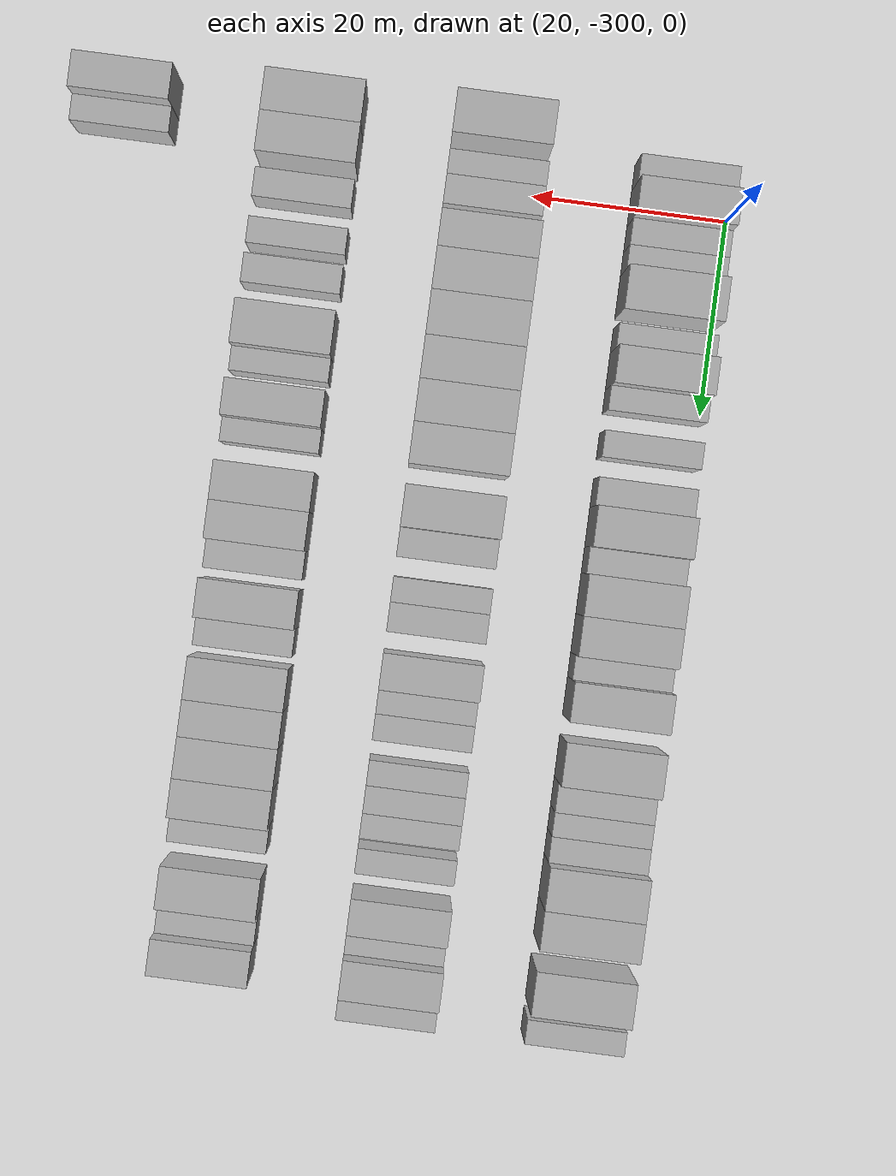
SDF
<sdf version="1.6">
 <world name="default">
  <model name="building_14">
   <static>1</static>
   <pose>25.0000 -303.2031 0 0.000000 0.000000 0.000000</pose>
   <link name="link">
    <pose>0 0 3.00 0 0 0</pose>
    <collision name="collision"><geometry><box><size>10.0000 2.7417 6.0000</size></box></geometry></collision>
    <visual name="visual">
     <cast_shadows>0</cast_shadows>
     <geometry><box><size>10.0000 2.7417 6.0000</size></box></geometry>
     <material>
      <script>
       <uri>model://HANNAS_wall/materials/scripts</uri>
       <uri>model://HANNAS_wall/materials/textures</uri>
       <name>vrc/HANNAS_wall</name>
      </script>
     </material>
    </visual>
   </link>
  </model>
  <model name="building_15">
   <static>1</static>
   <pose>25.0000 -299.9807 0 0.000000 0.000000 0.000000</pose>
   <link name="link">
    <pose>0 0 4.50 0 0 0</pose>
    <collision name="collision"><geometry><box><size>10.0000 3.7031 9.0000</size></box></geometry></collision>
    <visual name="visual">
     <cast_shadows>0</cast_shadows>
     <geometry><box><size>10.0000 3.7031 9.0000</size></box></geometry>
     <material>
      <script>
       <uri>model://HANNAS_wall/materials/scripts</uri>
       <uri>model://HANNAS_wall/materials/textures</uri>
       <name>vrc/HANNAS_wall</name>
      </script>
     </material>
    </visual>
   </link>
  </model>
  <model name="building_16">
   <static>1</static>
   <pose>25.0000 -296.7913 0 0.000000 0.000000 0.000000</pose>
   <link name="link">
    <pose>0 0 3.00 0 0 0</pose>
    <collision name="collision"><geometry><box><size>10.0000 2.6758 6.0000</size></box></geometry></collision>
    <visual name="visual">
     <cast_shadows>0</cast_shadows>
     <geometry><box><size>10.0000 2.6758 6.0000</size></box></geometry>
     <material>
      <script>
       <uri>model://HANNAS_wall/materials/scripts</uri>
       <uri>model://HANNAS_wall/materials/textures</uri>
       <name>vrc/HANNAS_wall</name>
      </script>
     </material>
    </visual>
   </link>
  </model>
  <model name="building_17">
   <static>1</static>
   <pose>25.0000 -294.2476 0 0.000000 0.000000 0.000000</pose>
   <link name="link">
    <pose>0 0 3.00 0 0 0</pose>
    <collision name="collision"><geometry><box><size>10.0000 2.4116 6.0000</size></box></geometry></collision>
    <visual name="visual">
     <cast_shadows>0</cast_shadows>
     <geometry><box><size>10.0000 2.4116 6.0000</size></box></geometry>
     <material>
      <script>
       <uri>model://HANNAS_wall/materials/scripts</uri>
       <uri>model://HANNAS_wall/materials/textures</uri>
       <name>vrc/HANNAS_wall</name>
      </script>
     </material>
    </visual>
   </link>
  </model>
  <model name="building_18">
   <static>1</static>
   <pose>25.0000 -290.8268 0 0.000000 0.000000 0.000000</pose>
   <link name="link">
    <pose>0 0 4.50 0 0 0</pose>
    <collision name="collision"><geometry><box><size>10.0000 4.4300 9.0000</size></box></geometry></collision>
    <visual name="visual">
     <cast_shadows>0</cast_shadows>
     <geometry><box><size>10.0000 4.4300 9.0000</size></box></geometry>
     <material>
      <script>
       <uri>model://HANNAS_wall/materials/scripts</uri>
       <uri>model://HANNAS_wall/materials/textures</uri>
       <name>vrc/HANNAS_wall</name>
      </script>
     </material>
    </visual>
   </link>
  </model>
  <model name="building_19">
   <static>1</static>
   <pose>25.0000 -286.3658 0 0.000000 0.000000 0.000000</pose>
   <link name="link">
    <pose>0 0 3.00 0 0 0</pose>
    <collision name="collision"><geometry><box><size>10.0000 2.4921 6.0000</size></box></geometry></collision>
    <visual name="visual">
     <cast_shadows>0</cast_shadows>
     <geometry><box><size>10.0000 2.4921 6.0000</size></box></geometry>
     <material>
      <script>
       <uri>model://HANNAS_wall/materials/scripts</uri>
       <uri>model://HANNAS_wall/materials/textures</uri>
       <name>vrc/HANNAS_wall</name>
      </script>
     </material>
    </visual>
   </link>
  </model>
  <model name="building_20">
   <static>1</static>
   <pose>25.0000 -283.2193 0 0.000000 0.000000 0.000000</pose>
   <link name="link">
    <pose>0 0 4.50 0 0 0</pose>
    <collision name="collision"><geometry><box><size>10.0000 3.8008 9.0000</size></box></geometry></collision>
    <visual name="visual">
     <cast_shadows>0</cast_shadows>
     <geometry><box><size>10.0000 3.8008 9.0000</size></box></geometry>
     <material>
      <script>
       <uri>model://HANNAS_wall/materials/scripts</uri>
       <uri>model://HANNAS_wall/materials/textures</uri>
       <name>vrc/HANNAS_wall</name>
      </script>
     </material>
    </visual>
   </link>
  </model>
  <model name="building_21">
   <static>1</static>
   <pose>25.0000 -280.0776 0 0.000000 0.000000 0.000000</pose>
   <link name="link">
    <pose>0 0 3.00 0 0 0</pose>
    <collision name="collision"><geometry><box><size>10.0000 2.4828 6.0000</size></box></geometry></collision>
    <visual name="visual">
     <cast_shadows>0</cast_shadows>
     <geometry><box><size>10.0000 2.4828 6.0000</size></box></geometry>
     <material>
      <script>
       <uri>model://HANNAS_wall/materials/scripts</uri>
       <uri>model://HANNAS_wall/materials/textures</uri>
       <name>vrc/HANNAS_wall</name>
      </script>
     </material>
    </visual>
   </link>
  </model>
  <model name="building_22">
   <static>1</static>
   <pose>25.0000 -275.4867 0 0.000000 0.000000 0.000000</pose>
   <link name="link">
    <pose>0 0 3.00 0 0 0</pose>
    <collision name="collision"><geometry><box><size>10.0000 2.6989 6.0000</size></box></geometry></collision>
    <visual name="visual">
     <cast_shadows>0</cast_shadows>
     <geometry><box><size>10.0000 2.6989 6.0000</size></box></geometry>
     <material>
      <script>
       <uri>model://HANNAS_wall/materials/scripts</uri>
       <uri>model://HANNAS_wall/materials/textures</uri>
       <name>vrc/HANNAS_wall</name>
      </script>
     </material>
    </visual>
   </link>
  </model>
  <model name="building_23">
   <static>1</static>
   <pose>25.0000 -270.6789 0 0.000000 0.000000 0.000000</pose>
   <link name="link">
    <pose>0 0 3.00 0 0 0</pose>
    <collision name="collision"><geometry><box><size>10.0000 2.9167 6.0000</size></box></geometry></collision>
    <visual name="visual">
     <cast_shadows>0</cast_shadows>
     <geometry><box><size>10.0000 2.9167 6.0000</size></box></geometry>
     <material>
      <script>
       <uri>model://HANNAS_wall/materials/scripts</uri>
       <uri>model://HANNAS_wall/materials/textures</uri>
       <name>vrc/HANNAS_wall</name>
      </script>
     </material>
    </visual>
   </link>
  </model>
  <model name="building_24">
   <static>1</static>
   <pose>25.0000 -267.1660 0 0.000000 0.000000 0.000000</pose>
   <link name="link">
    <pose>0 0 4.50 0 0 0</pose>
    <collision name="collision"><geometry><box><size>10.0000 4.1092 9.0000</size></box></geometry></collision>
    <visual name="visual">
     <cast_shadows>0</cast_shadows>
     <geometry><box><size>10.0000 4.1092 9.0000</size></box></geometry>
     <material>
      <script>
       <uri>model://HANNAS_wall/materials/scripts</uri>
       <uri>model://HANNAS_wall/materials/textures</uri>
       <name>vrc/HANNAS_wall</name>
      </script>
     </material>
    </visual>
   </link>
  </model>
  <model name="building_25">
   <static>1</static>
   <pose>25.0000 -263.7615 0 0.000000 0.000000 0.000000</pose>
   <link name="link">
    <pose>0 0 3.00 0 0 0</pose>
    <collision name="collision"><geometry><box><size>10.0000 2.6999 6.0000</size></box></geometry></collision>
    <visual name="visual">
     <cast_shadows>0</cast_shadows>
     <geometry><box><size>10.0000 2.6999 6.0000</size></box></geometry>
     <material>
      <script>
       <uri>model://HANNAS_wall/materials/scripts</uri>
       <uri>model://HANNAS_wall/materials/textures</uri>
       <name>vrc/HANNAS_wall</name>
      </script>
     </material>
    </visual>
   </link>
  </model>
  <model name="building_26">
   <static>1</static>
   <pose>25.0000 -260.3240 0 0.000000 0.000000 0.000000</pose>
   <link name="link">
    <pose>0 0 4.50 0 0 0</pose>
    <collision name="collision"><geometry><box><size>10.0000 4.1752 9.0000</size></box></geometry></collision>
    <visual name="visual">
     <cast_shadows>0</cast_shadows>
     <geometry><box><size>10.0000 4.1752 9.0000</size></box></geometry>
     <material>
      <script>
       <uri>model://HANNAS_wall/materials/scripts</uri>
       <uri>model://HANNAS_wall/materials/textures</uri>
       <name>vrc/HANNAS_wall</name>
      </script>
     </material>
    </visual>
   </link>
  </model>
  <model name="building_27">
   <static>1</static>
   <pose>25.0000 -256.2329 0 0.000000 0.000000 0.000000</pose>
   <link name="link">
    <pose>0 0 4.50 0 0 0</pose>
    <collision name="collision"><geometry><box><size>10.0000 4.0070 9.0000</size></box></geometry></collision>
    <visual name="visual">
     <cast_shadows>0</cast_shadows>
     <geometry><box><size>10.0000 4.0070 9.0000</size></box></geometry>
     <material>
      <script>
       <uri>model://HANNAS_wall/materials/scripts</uri>
       <uri>model://HANNAS_wall/materials/textures</uri>
       <name>vrc/HANNAS_wall</name>
      </script>
     </material>
    </visual>
   </link>
  </model>
  <model name="building_28">
   <static>1</static>
   <pose>25.0000 -252.9820 0 0.000000 0.000000 0.000000</pose>
   <link name="link">
    <pose>0 0 3.00 0 0 0</pose>
    <collision name="collision"><geometry><box><size>10.0000 2.4947 6.0000</size></box></geometry></collision>
    <visual name="visual">
     <cast_shadows>0</cast_shadows>
     <geometry><box><size>10.0000 2.4947 6.0000</size></box></geometry>
     <material>
      <script>
       <uri>model://HANNAS_wall/materials/scripts</uri>
       <uri>model://HANNAS_wall/materials/textures</uri>
       <name>vrc/HANNAS_wall</name>
      </script>
     </material>
    </visual>
   </link>
  </model>
  <model name="building_29">
   <static>1</static>
   <pose>25.0000 -249.7479 0 0.000000 0.000000 0.000000</pose>
   <link name="link">
    <pose>0 0 4.50 0 0 0</pose>
    <collision name="collision"><geometry><box><size>10.0000 3.9736 9.0000</size></box></geometry></collision>
    <visual name="visual">
     <cast_shadows>0</cast_shadows>
     <geometry><box><size>10.0000 3.9736 9.0000</size></box></geometry>
     <material>
      <script>
       <uri>model://HANNAS_wall/materials/scripts</uri>
       <uri>model://HANNAS_wall/materials/textures</uri>
       <name>vrc/HANNAS_wall</name>
      </script>
     </material>
    </visual>
   </link>
  </model>
  <model name="building_30">
   <static>1</static>
   <pose>25.0000 -243.5665 0 0.000000 0.000000 0.000000</pose>
   <link name="link">
    <pose>0 0 4.50 0 0 0</pose>
    <collision name="collision"><geometry><box><size>10.0000 4.3892 9.0000</size></box></geometry></collision>
    <visual name="visual">
     <cast_shadows>0</cast_shadows>
     <geometry><box><size>10.0000 4.3892 9.0000</size></box></geometry>
     <material>
      <script>
       <uri>model://HANNAS_wall/materials/scripts</uri>
       <uri>model://HANNAS_wall/materials/textures</uri>
       <name>vrc/HANNAS_wall</name>
      </script>
     </material>
    </visual>
   </link>
  </model>
  <model name="building_31">
   <static>1</static>
   <pose>25.0000 -239.9067 0 0.000000 0.000000 0.000000</pose>
   <link name="link">
    <pose>0 0 3.00 0 0 0</pose>
    <collision name="collision"><geometry><box><size>10.0000 2.9305 6.0000</size></box></geometry></collision>
    <visual name="visual">
     <cast_shadows>0</cast_shadows>
     <geometry><box><size>10.0000 2.9305 6.0000</size></box></geometry>
     <material>
      <script>
       <uri>model://HANNAS_wall/materials/scripts</uri>
       <uri>model://HANNAS_wall/materials/textures</uri>
       <name>vrc/HANNAS_wall</name>
      </script>
     </material>
    </visual>
   </link>
  </model>
  <model name="building_32">
   <static>1</static>
   <pose>25.0000 -237.2282 0 0.000000 0.000000 0.000000</pose>
   <link name="link">
    <pose>0 0 3.00 0 0 0</pose>
    <collision name="collision"><geometry><box><size>10.0000 2.4264 6.0000</size></box></geometry></collision>
    <visual name="visual">
     <cast_shadows>0</cast_shadows>
     <geometry><box><size>10.0000 2.4264 6.0000</size></box></geometry>
     <material>
      <script>
       <uri>model://HANNAS_wall/materials/scripts</uri>
       <uri>model://HANNAS_wall/materials/textures</uri>
       <name>vrc/HANNAS_wall</name>
      </script>
     </material>
    </visual>
   </link>
  </model>
  <model name="building_33">
   <static>1</static>
   <pose>25.0000 -234.7073 0 0.000000 0.000000 0.000000</pose>
   <link name="link">
    <pose>0 0 3.00 0 0 0</pose>
    <collision name="collision"><geometry><box><size>10.0000 2.6153 6.0000</size></box></geometry></collision>
    <visual name="visual">
     <cast_shadows>0</cast_shadows>
     <geometry><box><size>10.0000 2.6153 6.0000</size></box></geometry>
     <material>
      <script>
       <uri>model://HANNAS_wall/materials/scripts</uri>
       <uri>model://HANNAS_wall/materials/textures</uri>
       <name>vrc/HANNAS_wall</name>
      </script>
     </material>
    </visual>
   </link>
  </model>
  <model name="building_34">
   <static>1</static>
   <pose>25.0000 -231.2431 0 0.000000 0.000000 0.000000</pose>
   <link name="link">
    <pose>0 0 4.50 0 0 0</pose>
    <collision name="collision"><geometry><box><size>10.0000 4.3132 9.0000</size></box></geometry></collision>
    <visual name="visual">
     <cast_shadows>0</cast_shadows>
     <geometry><box><size>10.0000 4.3132 9.0000</size></box></geometry>
     <material>
      <script>
       <uri>model://HANNAS_wall/materials/scripts</uri>
       <uri>model://HANNAS_wall/materials/textures</uri>
       <name>vrc/HANNAS_wall</name>
      </script>
     </material>
    </visual>
   </link>
  </model>
  <model name="building_35">
   <static>1</static>
   <pose>25.0000 -227.1045 0 0.000000 0.000000 0.000000</pose>
   <link name="link">
    <pose>0 0 4.50 0 0 0</pose>
    <collision name="collision"><geometry><box><size>10.0000 3.9639 9.0000</size></box></geometry></collision>
    <visual name="visual">
     <cast_shadows>0</cast_shadows>
     <geometry><box><size>10.0000 3.9639 9.0000</size></box></geometry>
     <material>
      <script>
       <uri>model://HANNAS_wall/materials/scripts</uri>
       <uri>model://HANNAS_wall/materials/textures</uri>
       <name>vrc/HANNAS_wall</name>
      </script>
     </material>
    </visual>
   </link>
  </model>
  <model name="building_36">
   <static>1</static>
   <pose>25.0000 -220.8917 0 0.000000 0.000000 0.000000</pose>
   <link name="link">
    <pose>0 0 4.50 0 0 0</pose>
    <collision name="collision"><geometry><box><size>10.0000 4.4618 9.0000</size></box></geometry></collision>
    <visual name="visual">
     <cast_shadows>0</cast_shadows>
     <geometry><box><size>10.0000 4.4618 9.0000</size></box></geometry>
     <material>
      <script>
       <uri>model://HANNAS_wall/materials/scripts</uri>
       <uri>model://HANNAS_wall/materials/textures</uri>
       <name>vrc/HANNAS_wall</name>
      </script>
     </material>
    </visual>
   </link>
  </model>
  <model name="building_37">
   <static>1</static>
   <pose>25.0000 -216.4387 0 0.000000 0.000000 0.000000</pose>
   <link name="link">
    <pose>0 0 3.00 0 0 0</pose>
    <collision name="collision"><geometry><box><size>10.0000 2.4442 6.0000</size></box></geometry></collision>
    <visual name="visual">
     <cast_shadows>0</cast_shadows>
     <geometry><box><size>10.0000 2.4442 6.0000</size></box></geometry>
     <material>
      <script>
       <uri>model://HANNAS_wall/materials/scripts</uri>
       <uri>model://HANNAS_wall/materials/textures</uri>
       <name>vrc/HANNAS_wall</name>
      </script>
     </material>
    </visual>
   </link>
  </model>
  <model name="building_189">
   <static>1</static>
   <pose>44.0000 -305.7655 0 0.000000 0.000000 0.000000</pose>
   <link name="link">
    <pose>0 0 4.50 0 0 0</pose>
    <collision name="collision"><geometry><box><size>10.0000 4.3821 9.0000</size></box></geometry></collision>
    <visual name="visual">
     <cast_shadows>0</cast_shadows>
     <geometry><box><size>10.0000 4.3821 9.0000</size></box></geometry>
     <material>
      <script>
       <uri>model://HANNAS_wall/materials/scripts</uri>
       <uri>model://HANNAS_wall/materials/textures</uri>
       <name>vrc/HANNAS_wall</name>
      </script>
     </material>
    </visual>
   </link>
  </model>
  <model name="building_190">
   <static>1</static>
   <pose>44.0000 -301.3249 0 0.000000 0.000000 0.000000</pose>
   <link name="link">
    <pose>0 0 3.00 0 0 0</pose>
    <collision name="collision"><geometry><box><size>10.0000 2.4990 6.0000</size></box></geometry></collision>
    <visual name="visual">
     <cast_shadows>0</cast_shadows>
     <geometry><box><size>10.0000 2.4990 6.0000</size></box></geometry>
     <material>
      <script>
       <uri>model://HANNAS_wall/materials/scripts</uri>
       <uri>model://HANNAS_wall/materials/textures</uri>
       <name>vrc/HANNAS_wall</name>
      </script>
     </material>
    </visual>
   </link>
  </model>
  <model name="building_191">
   <static>1</static>
   <pose>44.0000 -298.5763 0 0.000000 0.000000 0.000000</pose>
   <link name="link">
    <pose>0 0 3.00 0 0 0</pose>
    <collision name="collision"><geometry><box><size>10.0000 2.9982 6.0000</size></box></geometry></collision>
    <visual name="visual">
     <cast_shadows>0</cast_shadows>
     <geometry><box><size>10.0000 2.9982 6.0000</size></box></geometry>
     <material>
      <script>
       <uri>model://HANNAS_wall/materials/scripts</uri>
       <uri>model://HANNAS_wall/materials/textures</uri>
       <name>vrc/HANNAS_wall</name>
      </script>
     </material>
    </visual>
   </link>
  </model>
  <model name="building_192">
   <static>1</static>
   <pose>44.0000 -294.2156 0 0.000000 0.000000 0.000000</pose>
   <link name="link">
    <pose>0 0 4.50 0 0 0</pose>
    <collision name="collision"><geometry><box><size>10.0000 3.7234 9.0000</size></box></geometry></collision>
    <visual name="visual">
     <cast_shadows>0</cast_shadows>
     <geometry><box><size>10.0000 3.7234 9.0000</size></box></geometry>
     <material>
      <script>
       <uri>model://HANNAS_wall/materials/scripts</uri>
       <uri>model://HANNAS_wall/materials/textures</uri>
       <name>vrc/HANNAS_wall</name>
      </script>
     </material>
    </visual>
   </link>
  </model>
  <model name="building_193">
   <static>1</static>
   <pose>44.0000 -290.2253 0 0.000000 0.000000 0.000000</pose>
   <link name="link">
    <pose>0 0 4.50 0 0 0</pose>
    <collision name="collision"><geometry><box><size>10.0000 4.2571 9.0000</size></box></geometry></collision>
    <visual name="visual">
     <cast_shadows>0</cast_shadows>
     <geometry><box><size>10.0000 4.2571 9.0000</size></box></geometry>
     <material>
      <script>
       <uri>model://HANNAS_wall/materials/scripts</uri>
       <uri>model://HANNAS_wall/materials/textures</uri>
       <name>vrc/HANNAS_wall</name>
      </script>
     </material>
    </visual>
   </link>
  </model>
  <model name="building_194">
   <static>1</static>
   <pose>44.0000 -285.8534 0 0.000000 0.000000 0.000000</pose>
   <link name="link">
    <pose>0 0 4.50 0 0 0</pose>
    <collision name="collision"><geometry><box><size>10.0000 4.4868 9.0000</size></box></geometry></collision>
    <visual name="visual">
     <cast_shadows>0</cast_shadows>
     <geometry><box><size>10.0000 4.4868 9.0000</size></box></geometry>
     <material>
      <script>
       <uri>model://HANNAS_wall/materials/scripts</uri>
       <uri>model://HANNAS_wall/materials/textures</uri>
       <name>vrc/HANNAS_wall</name>
      </script>
     </material>
    </visual>
   </link>
  </model>
  <model name="building_195">
   <static>1</static>
   <pose>44.0000 -281.4491 0 0.000000 0.000000 0.000000</pose>
   <link name="link">
    <pose>0 0 4.50 0 0 0</pose>
    <collision name="collision"><geometry><box><size>10.0000 4.3219 9.0000</size></box></geometry></collision>
    <visual name="visual">
     <cast_shadows>0</cast_shadows>
     <geometry><box><size>10.0000 4.3219 9.0000</size></box></geometry>
     <material>
      <script>
       <uri>model://HANNAS_wall/materials/scripts</uri>
       <uri>model://HANNAS_wall/materials/textures</uri>
       <name>vrc/HANNAS_wall</name>
      </script>
     </material>
    </visual>
   </link>
  </model>
  <model name="building_196">
   <static>1</static>
   <pose>44.0000 -277.1603 0 0.000000 0.000000 0.000000</pose>
   <link name="link">
    <pose>0 0 4.50 0 0 0</pose>
    <collision name="collision"><geometry><box><size>10.0000 4.2555 9.0000</size></box></geometry></collision>
    <visual name="visual">
     <cast_shadows>0</cast_shadows>
     <geometry><box><size>10.0000 4.2555 9.0000</size></box></geometry>
     <material>
      <script>
       <uri>model://HANNAS_wall/materials/scripts</uri>
       <uri>model://HANNAS_wall/materials/textures</uri>
       <name>vrc/HANNAS_wall</name>
      </script>
     </material>
    </visual>
   </link>
  </model>
  <model name="building_197">
   <static>1</static>
   <pose>44.0000 -272.9339 0 0.000000 0.000000 0.000000</pose>
   <link name="link">
    <pose>0 0 4.50 0 0 0</pose>
    <collision name="collision"><geometry><box><size>10.0000 4.1973 9.0000</size></box></geometry></collision>
    <visual name="visual">
     <cast_shadows>0</cast_shadows>
     <geometry><box><size>10.0000 4.1973 9.0000</size></box></geometry>
     <material>
      <script>
       <uri>model://HANNAS_wall/materials/scripts</uri>
       <uri>model://HANNAS_wall/materials/textures</uri>
       <name>vrc/HANNAS_wall</name>
      </script>
     </material>
    </visual>
   </link>
  </model>
  <model name="building_198">
   <static>1</static>
   <pose>44.0000 -266.7145 0 0.000000 0.000000 0.000000</pose>
   <link name="link">
    <pose>0 0 4.50 0 0 0</pose>
    <collision name="collision"><geometry><box><size>10.0000 4.2416 9.0000</size></box></geometry></collision>
    <visual name="visual">
     <cast_shadows>0</cast_shadows>
     <geometry><box><size>10.0000 4.2416 9.0000</size></box></geometry>
     <material>
      <script>
       <uri>model://HANNAS_wall/materials/scripts</uri>
       <uri>model://HANNAS_wall/materials/textures</uri>
       <name>vrc/HANNAS_wall</name>
      </script>
     </material>
    </visual>
   </link>
  </model>
  <model name="building_199">
   <static>1</static>
   <pose>44.0000 -263.1127 0 0.000000 0.000000 0.000000</pose>
   <link name="link">
    <pose>0 0 3.00 0 0 0</pose>
    <collision name="collision"><geometry><box><size>10.0000 2.9619 6.0000</size></box></geometry></collision>
    <visual name="visual">
     <cast_shadows>0</cast_shadows>
     <geometry><box><size>10.0000 2.9619 6.0000</size></box></geometry>
     <material>
      <script>
       <uri>model://HANNAS_wall/materials/scripts</uri>
       <uri>model://HANNAS_wall/materials/textures</uri>
       <name>vrc/HANNAS_wall</name>
      </script>
     </material>
    </visual>
   </link>
  </model>
  <model name="building_200">
   <static>1</static>
   <pose>44.0000 -258.3538 0 0.000000 0.000000 0.000000</pose>
   <link name="link">
    <pose>0 0 3.00 0 0 0</pose>
    <collision name="collision"><geometry><box><size>10.0000 2.5560 6.0000</size></box></geometry></collision>
    <visual name="visual">
     <cast_shadows>0</cast_shadows>
     <geometry><box><size>10.0000 2.5560 6.0000</size></box></geometry>
     <material>
      <script>
       <uri>model://HANNAS_wall/materials/scripts</uri>
       <uri>model://HANNAS_wall/materials/textures</uri>
       <name>vrc/HANNAS_wall</name>
      </script>
     </material>
    </visual>
   </link>
  </model>
  <model name="building_201">
   <static>1</static>
   <pose>44.0000 -255.5910 0 0.000000 0.000000 0.000000</pose>
   <link name="link">
    <pose>0 0 3.00 0 0 0</pose>
    <collision name="collision"><geometry><box><size>10.0000 2.9695 6.0000</size></box></geometry></collision>
    <visual name="visual">
     <cast_shadows>0</cast_shadows>
     <geometry><box><size>10.0000 2.9695 6.0000</size></box></geometry>
     <material>
      <script>
       <uri>model://HANNAS_wall/materials/scripts</uri>
       <uri>model://HANNAS_wall/materials/textures</uri>
       <name>vrc/HANNAS_wall</name>
      </script>
     </material>
    </visual>
   </link>
  </model>
  <model name="building_202">
   <static>1</static>
   <pose>44.0000 -250.2738 0 0.000000 0.000000 0.000000</pose>
   <link name="link">
    <pose>0 0 4.50 0 0 0</pose>
    <collision name="collision"><geometry><box><size>10.0000 3.6648 9.0000</size></box></geometry></collision>
    <visual name="visual">
     <cast_shadows>0</cast_shadows>
     <geometry><box><size>10.0000 3.6648 9.0000</size></box></geometry>
     <material>
      <script>
       <uri>model://HANNAS_wall/materials/scripts</uri>
       <uri>model://HANNAS_wall/materials/textures</uri>
       <name>vrc/HANNAS_wall</name>
      </script>
     </material>
    </visual>
   </link>
  </model>
  <model name="building_203">
   <static>1</static>
   <pose>44.0000 -247.1419 0 0.000000 0.000000 0.000000</pose>
   <link name="link">
    <pose>0 0 3.00 0 0 0</pose>
    <collision name="collision"><geometry><box><size>10.0000 2.5991 6.0000</size></box></geometry></collision>
    <visual name="visual">
     <cast_shadows>0</cast_shadows>
     <geometry><box><size>10.0000 2.5991 6.0000</size></box></geometry>
     <material>
      <script>
       <uri>model://HANNAS_wall/materials/scripts</uri>
       <uri>model://HANNAS_wall/materials/textures</uri>
       <name>vrc/HANNAS_wall</name>
      </script>
     </material>
    </visual>
   </link>
  </model>
  <model name="building_204">
   <static>1</static>
   <pose>44.0000 -244.5258 0 0.000000 0.000000 0.000000</pose>
   <link name="link">
    <pose>0 0 3.00 0 0 0</pose>
    <collision name="collision"><geometry><box><size>10.0000 2.6332 6.0000</size></box></geometry></collision>
    <visual name="visual">
     <cast_shadows>0</cast_shadows>
     <geometry><box><size>10.0000 2.6332 6.0000</size></box></geometry>
     <material>
      <script>
       <uri>model://HANNAS_wall/materials/scripts</uri>
       <uri>model://HANNAS_wall/materials/textures</uri>
       <name>vrc/HANNAS_wall</name>
      </script>
     </material>
    </visual>
   </link>
  </model>
  <model name="building_205">
   <static>1</static>
   <pose>44.0000 -239.9290 0 0.000000 0.000000 0.000000</pose>
   <link name="link">
    <pose>0 0 3.00 0 0 0</pose>
    <collision name="collision"><geometry><box><size>10.0000 2.5602 6.0000</size></box></geometry></collision>
    <visual name="visual">
     <cast_shadows>0</cast_shadows>
     <geometry><box><size>10.0000 2.5602 6.0000</size></box></geometry>
     <material>
      <script>
       <uri>model://HANNAS_wall/materials/scripts</uri>
       <uri>model://HANNAS_wall/materials/textures</uri>
       <name>vrc/HANNAS_wall</name>
      </script>
     </material>
    </visual>
   </link>
  </model>
  <model name="building_206">
   <static>1</static>
   <pose>44.0000 -237.2531 0 0.000000 0.000000 0.000000</pose>
   <link name="link">
    <pose>0 0 3.00 0 0 0</pose>
    <collision name="collision"><geometry><box><size>10.0000 2.7917 6.0000</size></box></geometry></collision>
    <visual name="visual">
     <cast_shadows>0</cast_shadows>
     <geometry><box><size>10.0000 2.7917 6.0000</size></box></geometry>
     <material>
      <script>
       <uri>model://HANNAS_wall/materials/scripts</uri>
       <uri>model://HANNAS_wall/materials/textures</uri>
       <name>vrc/HANNAS_wall</name>
      </script>
     </material>
    </visual>
   </link>
  </model>
  <model name="building_207">
   <static>1</static>
   <pose>44.0000 -234.6145 0 0.000000 0.000000 0.000000</pose>
   <link name="link">
    <pose>0 0 3.00 0 0 0</pose>
    <collision name="collision"><geometry><box><size>10.0000 2.4855 6.0000</size></box></geometry></collision>
    <visual name="visual">
     <cast_shadows>0</cast_shadows>
     <geometry><box><size>10.0000 2.4855 6.0000</size></box></geometry>
     <material>
      <script>
       <uri>model://HANNAS_wall/materials/scripts</uri>
       <uri>model://HANNAS_wall/materials/textures</uri>
       <name>vrc/HANNAS_wall</name>
      </script>
     </material>
    </visual>
   </link>
  </model>
  <model name="building_208">
   <static>1</static>
   <pose>44.0000 -231.0941 0 0.000000 0.000000 0.000000</pose>
   <link name="link">
    <pose>0 0 3.00 0 0 0</pose>
    <collision name="collision"><geometry><box><size>10.0000 2.5554 6.0000</size></box></geometry></collision>
    <visual name="visual">
     <cast_shadows>0</cast_shadows>
     <geometry><box><size>10.0000 2.5554 6.0000</size></box></geometry>
     <material>
      <script>
       <uri>model://HANNAS_wall/materials/scripts</uri>
       <uri>model://HANNAS_wall/materials/textures</uri>
       <name>vrc/HANNAS_wall</name>
      </script>
     </material>
    </visual>
   </link>
  </model>
  <model name="building_209">
   <static>1</static>
   <pose>44.0000 -226.0003 0 0.000000 0.000000 0.000000</pose>
   <link name="link">
    <pose>0 0 4.50 0 0 0</pose>
    <collision name="collision"><geometry><box><size>10.0000 3.6321 9.0000</size></box></geometry></collision>
    <visual name="visual">
     <cast_shadows>0</cast_shadows>
     <geometry><box><size>10.0000 3.6321 9.0000</size></box></geometry>
     <material>
      <script>
       <uri>model://HANNAS_wall/materials/scripts</uri>
       <uri>model://HANNAS_wall/materials/textures</uri>
       <name>vrc/HANNAS_wall</name>
      </script>
     </material>
    </visual>
   </link>
  </model>
  <model name="building_210">
   <static>1</static>
   <pose>44.0000 -222.9588 0 0.000000 0.000000 0.000000</pose>
   <link name="link">
    <pose>0 0 3.00 0 0 0</pose>
    <collision name="collision"><geometry><box><size>10.0000 2.4509 6.0000</size></box></geometry></collision>
    <visual name="visual">
     <cast_shadows>0</cast_shadows>
     <geometry><box><size>10.0000 2.4509 6.0000</size></box></geometry>
     <material>
      <script>
       <uri>model://HANNAS_wall/materials/scripts</uri>
       <uri>model://HANNAS_wall/materials/textures</uri>
       <name>vrc/HANNAS_wall</name>
      </script>
     </material>
    </visual>
   </link>
  </model>
  <model name="building_211">
   <static>1</static>
   <pose>44.0000 -219.7711 0 0.000000 0.000000 0.000000</pose>
   <link name="link">
    <pose>0 0 4.50 0 0 0</pose>
    <collision name="collision"><geometry><box><size>10.0000 3.9245 9.0000</size></box></geometry></collision>
    <visual name="visual">
     <cast_shadows>0</cast_shadows>
     <geometry><box><size>10.0000 3.9245 9.0000</size></box></geometry>
     <material>
      <script>
       <uri>model://HANNAS_wall/materials/scripts</uri>
       <uri>model://HANNAS_wall/materials/textures</uri>
       <name>vrc/HANNAS_wall</name>
      </script>
     </material>
    </visual>
   </link>
  </model>
  <model name="building_212">
   <static>1</static>
   <pose>44.0000 -216.4694 0 0.000000 0.000000 0.000000</pose>
   <link name="link">
    <pose>0 0 3.00 0 0 0</pose>
    <collision name="collision"><geometry><box><size>10.0000 2.6789 6.0000</size></box></geometry></collision>
    <visual name="visual">
     <cast_shadows>0</cast_shadows>
     <geometry><box><size>10.0000 2.6789 6.0000</size></box></geometry>
     <material>
      <script>
       <uri>model://HANNAS_wall/materials/scripts</uri>
       <uri>model://HANNAS_wall/materials/textures</uri>
       <name>vrc/HANNAS_wall</name>
      </script>
     </material>
    </visual>
   </link>
  </model>
  <model name="building_367">
   <static>1</static>
   <pose>63.0000 -305.3886 0 0.000000 0.000000 0.000000</pose>
   <link name="link">
    <pose>0 0 4.50 0 0 0</pose>
    <collision name="collision"><geometry><box><size>10.0000 4.2496 9.0000</size></box></geometry></collision>
    <visual name="visual">
     <cast_shadows>0</cast_shadows>
     <geometry><box><size>10.0000 4.2496 9.0000</size></box></geometry>
     <material>
      <script>
       <uri>model://HANNAS_wall/materials/scripts</uri>
       <uri>model://HANNAS_wall/materials/textures</uri>
       <name>vrc/HANNAS_wall</name>
      </script>
     </material>
    </visual>
   </link>
  </model>
  <model name="building_368">
   <static>1</static>
   <pose>63.0000 -301.2530 0 0.000000 0.000000 0.000000</pose>
   <link name="link">
    <pose>0 0 4.50 0 0 0</pose>
    <collision name="collision"><geometry><box><size>10.0000 4.0216 9.0000</size></box></geometry></collision>
    <visual name="visual">
     <cast_shadows>0</cast_shadows>
     <geometry><box><size>10.0000 4.0216 9.0000</size></box></geometry>
     <material>
      <script>
       <uri>model://HANNAS_wall/materials/scripts</uri>
       <uri>model://HANNAS_wall/materials/textures</uri>
       <name>vrc/HANNAS_wall</name>
      </script>
     </material>
    </visual>
   </link>
  </model>
  <model name="building_369">
   <static>1</static>
   <pose>63.0000 -296.7792 0 0.000000 0.000000 0.000000</pose>
   <link name="link">
    <pose>0 0 3.00 0 0 0</pose>
    <collision name="collision"><geometry><box><size>10.0000 2.9260 6.0000</size></box></geometry></collision>
    <visual name="visual">
     <cast_shadows>0</cast_shadows>
     <geometry><box><size>10.0000 2.9260 6.0000</size></box></geometry>
     <material>
      <script>
       <uri>model://HANNAS_wall/materials/scripts</uri>
       <uri>model://HANNAS_wall/materials/textures</uri>
       <name>vrc/HANNAS_wall</name>
      </script>
     </material>
    </visual>
   </link>
  </model>
  <model name="building_370">
   <static>1</static>
   <pose>63.0000 -291.9832 0 0.000000 0.000000 0.000000</pose>
   <link name="link">
    <pose>0 0 3.00 0 0 0</pose>
    <collision name="collision"><geometry><box><size>10.0000 2.6661 6.0000</size></box></geometry></collision>
    <visual name="visual">
     <cast_shadows>0</cast_shadows>
     <geometry><box><size>10.0000 2.6661 6.0000</size></box></geometry>
     <material>
      <script>
       <uri>model://HANNAS_wall/materials/scripts</uri>
       <uri>model://HANNAS_wall/materials/textures</uri>
       <name>vrc/HANNAS_wall</name>
      </script>
     </material>
    </visual>
   </link>
  </model>
  <model name="building_371">
   <static>1</static>
   <pose>63.0000 -288.1815 0 0.000000 0.000000 0.000000</pose>
   <link name="link">
    <pose>0 0 3.00 0 0 0</pose>
    <collision name="collision"><geometry><box><size>10.0000 2.9372 6.0000</size></box></geometry></collision>
    <visual name="visual">
     <cast_shadows>0</cast_shadows>
     <geometry><box><size>10.0000 2.9372 6.0000</size></box></geometry>
     <material>
      <script>
       <uri>model://HANNAS_wall/materials/scripts</uri>
       <uri>model://HANNAS_wall/materials/textures</uri>
       <name>vrc/HANNAS_wall</name>
      </script>
     </material>
    </visual>
   </link>
  </model>
  <model name="building_372">
   <static>1</static>
   <pose>63.0000 -282.5011 0 0.000000 0.000000 0.000000</pose>
   <link name="link">
    <pose>0 0 4.50 0 0 0</pose>
    <collision name="collision"><geometry><box><size>10.0000 4.4237 9.0000</size></box></geometry></collision>
    <visual name="visual">
     <cast_shadows>0</cast_shadows>
     <geometry><box><size>10.0000 4.4237 9.0000</size></box></geometry>
     <material>
      <script>
       <uri>model://HANNAS_wall/materials/scripts</uri>
       <uri>model://HANNAS_wall/materials/textures</uri>
       <name>vrc/HANNAS_wall</name>
      </script>
     </material>
    </visual>
   </link>
  </model>
  <model name="building_373">
   <static>1</static>
   <pose>63.0000 -279.0647 0 0.000000 0.000000 0.000000</pose>
   <link name="link">
    <pose>0 0 3.00 0 0 0</pose>
    <collision name="collision"><geometry><box><size>10.0000 2.4491 6.0000</size></box></geometry></collision>
    <visual name="visual">
     <cast_shadows>0</cast_shadows>
     <geometry><box><size>10.0000 2.4491 6.0000</size></box></geometry>
     <material>
      <script>
       <uri>model://HANNAS_wall/materials/scripts</uri>
       <uri>model://HANNAS_wall/materials/textures</uri>
       <name>vrc/HANNAS_wall</name>
      </script>
     </material>
    </visual>
   </link>
  </model>
  <model name="building_374">
   <static>1</static>
   <pose>63.0000 -274.9988 0 0.000000 0.000000 0.000000</pose>
   <link name="link">
    <pose>0 0 4.50 0 0 0</pose>
    <collision name="collision"><geometry><box><size>10.0000 3.6827 9.0000</size></box></geometry></collision>
    <visual name="visual">
     <cast_shadows>0</cast_shadows>
     <geometry><box><size>10.0000 3.6827 9.0000</size></box></geometry>
     <material>
      <script>
       <uri>model://HANNAS_wall/materials/scripts</uri>
       <uri>model://HANNAS_wall/materials/textures</uri>
       <name>vrc/HANNAS_wall</name>
      </script>
     </material>
    </visual>
   </link>
  </model>
  <model name="building_375">
   <static>1</static>
   <pose>63.0000 -271.9363 0 0.000000 0.000000 0.000000</pose>
   <link name="link">
    <pose>0 0 3.00 0 0 0</pose>
    <collision name="collision"><geometry><box><size>10.0000 2.4423 6.0000</size></box></geometry></collision>
    <visual name="visual">
     <cast_shadows>0</cast_shadows>
     <geometry><box><size>10.0000 2.4423 6.0000</size></box></geometry>
     <material>
      <script>
       <uri>model://HANNAS_wall/materials/scripts</uri>
       <uri>model://HANNAS_wall/materials/textures</uri>
       <name>vrc/HANNAS_wall</name>
      </script>
     </material>
    </visual>
   </link>
  </model>
  <model name="building_376">
   <static>1</static>
   <pose>63.0000 -266.7467 0 0.000000 0.000000 0.000000</pose>
   <link name="link">
    <pose>0 0 4.50 0 0 0</pose>
    <collision name="collision"><geometry><box><size>10.0000 3.9371 9.0000</size></box></geometry></collision>
    <visual name="visual">
     <cast_shadows>0</cast_shadows>
     <geometry><box><size>10.0000 3.9371 9.0000</size></box></geometry>
     <material>
      <script>
       <uri>model://HANNAS_wall/materials/scripts</uri>
       <uri>model://HANNAS_wall/materials/textures</uri>
       <name>vrc/HANNAS_wall</name>
      </script>
     </material>
    </visual>
   </link>
  </model>
  <model name="building_377">
   <static>1</static>
   <pose>63.0000 -262.8539 0 0.000000 0.000000 0.000000</pose>
   <link name="link">
    <pose>0 0 4.50 0 0 0</pose>
    <collision name="collision"><geometry><box><size>10.0000 3.8485 9.0000</size></box></geometry></collision>
    <visual name="visual">
     <cast_shadows>0</cast_shadows>
     <geometry><box><size>10.0000 3.8485 9.0000</size></box></geometry>
     <material>
      <script>
       <uri>model://HANNAS_wall/materials/scripts</uri>
       <uri>model://HANNAS_wall/materials/textures</uri>
       <name>vrc/HANNAS_wall</name>
      </script>
     </material>
    </visual>
   </link>
  </model>
  <model name="building_378">
   <static>1</static>
   <pose>63.0000 -259.4821 0 0.000000 0.000000 0.000000</pose>
   <link name="link">
    <pose>0 0 3.00 0 0 0</pose>
    <collision name="collision"><geometry><box><size>10.0000 2.8949 6.0000</size></box></geometry></collision>
    <visual name="visual">
     <cast_shadows>0</cast_shadows>
     <geometry><box><size>10.0000 2.8949 6.0000</size></box></geometry>
     <material>
      <script>
       <uri>model://HANNAS_wall/materials/scripts</uri>
       <uri>model://HANNAS_wall/materials/textures</uri>
       <name>vrc/HANNAS_wall</name>
      </script>
     </material>
    </visual>
   </link>
  </model>
  <model name="building_379">
   <static>1</static>
   <pose>63.0000 -255.0817 0 0.000000 0.000000 0.000000</pose>
   <link name="link">
    <pose>0 0 4.50 0 0 0</pose>
    <collision name="collision"><geometry><box><size>10.0000 3.9059 9.0000</size></box></geometry></collision>
    <visual name="visual">
     <cast_shadows>0</cast_shadows>
     <geometry><box><size>10.0000 3.9059 9.0000</size></box></geometry>
     <material>
      <script>
       <uri>model://HANNAS_wall/materials/scripts</uri>
       <uri>model://HANNAS_wall/materials/textures</uri>
       <name>vrc/HANNAS_wall</name>
      </script>
     </material>
    </visual>
   </link>
  </model>
  <model name="building_380">
   <static>1</static>
   <pose>63.0000 -251.6914 0 0.000000 0.000000 0.000000</pose>
   <link name="link">
    <pose>0 0 3.00 0 0 0</pose>
    <collision name="collision"><geometry><box><size>10.0000 2.8747 6.0000</size></box></geometry></collision>
    <visual name="visual">
     <cast_shadows>0</cast_shadows>
     <geometry><box><size>10.0000 2.8747 6.0000</size></box></geometry>
     <material>
      <script>
       <uri>model://HANNAS_wall/materials/scripts</uri>
       <uri>model://HANNAS_wall/materials/textures</uri>
       <name>vrc/HANNAS_wall</name>
      </script>
     </material>
    </visual>
   </link>
  </model>
  <model name="building_381">
   <static>1</static>
   <pose>63.0000 -247.1185 0 0.000000 0.000000 0.000000</pose>
   <link name="link">
    <pose>0 0 4.50 0 0 0</pose>
    <collision name="collision"><geometry><box><size>10.0000 4.2711 9.0000</size></box></geometry></collision>
    <visual name="visual">
     <cast_shadows>0</cast_shadows>
     <geometry><box><size>10.0000 4.2711 9.0000</size></box></geometry>
     <material>
      <script>
       <uri>model://HANNAS_wall/materials/scripts</uri>
       <uri>model://HANNAS_wall/materials/textures</uri>
       <name>vrc/HANNAS_wall</name>
      </script>
     </material>
    </visual>
   </link>
  </model>
  <model name="building_382">
   <static>1</static>
   <pose>63.0000 -243.1611 0 0.000000 0.000000 0.000000</pose>
   <link name="link">
    <pose>0 0 4.50 0 0 0</pose>
    <collision name="collision"><geometry><box><size>10.0000 3.6437 9.0000</size></box></geometry></collision>
    <visual name="visual">
     <cast_shadows>0</cast_shadows>
     <geometry><box><size>10.0000 3.6437 9.0000</size></box></geometry>
     <material>
      <script>
       <uri>model://HANNAS_wall/materials/scripts</uri>
       <uri>model://HANNAS_wall/materials/textures</uri>
       <name>vrc/HANNAS_wall</name>
      </script>
     </material>
    </visual>
   </link>
  </model>
  <model name="building_383">
   <static>1</static>
   <pose>63.0000 -239.2677 0 0.000000 0.000000 0.000000</pose>
   <link name="link">
    <pose>0 0 4.50 0 0 0</pose>
    <collision name="collision"><geometry><box><size>10.0000 4.1432 9.0000</size></box></geometry></collision>
    <visual name="visual">
     <cast_shadows>0</cast_shadows>
     <geometry><box><size>10.0000 4.1432 9.0000</size></box></geometry>
     <material>
      <script>
       <uri>model://HANNAS_wall/materials/scripts</uri>
       <uri>model://HANNAS_wall/materials/textures</uri>
       <name>vrc/HANNAS_wall</name>
      </script>
     </material>
    </visual>
   </link>
  </model>
  <model name="building_384">
   <static>1</static>
   <pose>63.0000 -235.2556 0 0.000000 0.000000 0.000000</pose>
   <link name="link">
    <pose>0 0 4.50 0 0 0</pose>
    <collision name="collision"><geometry><box><size>10.0000 3.8812 9.0000</size></box></geometry></collision>
    <visual name="visual">
     <cast_shadows>0</cast_shadows>
     <geometry><box><size>10.0000 3.8812 9.0000</size></box></geometry>
     <material>
      <script>
       <uri>model://HANNAS_wall/materials/scripts</uri>
       <uri>model://HANNAS_wall/materials/textures</uri>
       <name>vrc/HANNAS_wall</name>
      </script>
     </material>
    </visual>
   </link>
  </model>
  <model name="building_385">
   <static>1</static>
   <pose>63.0000 -231.9309 0 0.000000 0.000000 0.000000</pose>
   <link name="link">
    <pose>0 0 3.00 0 0 0</pose>
    <collision name="collision"><geometry><box><size>10.0000 2.7682 6.0000</size></box></geometry></collision>
    <visual name="visual">
     <cast_shadows>0</cast_shadows>
     <geometry><box><size>10.0000 2.7682 6.0000</size></box></geometry>
     <material>
      <script>
       <uri>model://HANNAS_wall/materials/scripts</uri>
       <uri>model://HANNAS_wall/materials/textures</uri>
       <name>vrc/HANNAS_wall</name>
      </script>
     </material>
    </visual>
   </link>
  </model>
  <model name="building_386">
   <static>1</static>
   <pose>63.0000 -226.4030 0 0.000000 0.000000 0.000000</pose>
   <link name="link">
    <pose>0 0 4.50 0 0 0</pose>
    <collision name="collision"><geometry><box><size>10.0000 4.2875 9.0000</size></box></geometry></collision>
    <visual name="visual">
     <cast_shadows>0</cast_shadows>
     <geometry><box><size>10.0000 4.2875 9.0000</size></box></geometry>
     <material>
      <script>
       <uri>model://HANNAS_wall/materials/scripts</uri>
       <uri>model://HANNAS_wall/materials/textures</uri>
       <name>vrc/HANNAS_wall</name>
      </script>
     </material>
    </visual>
   </link>
  </model>
  <model name="building_387">
   <static>1</static>
   <pose>63.0000 -222.8061 0 0.000000 0.000000 0.000000</pose>
   <link name="link">
    <pose>0 0 3.00 0 0 0</pose>
    <collision name="collision"><geometry><box><size>10.0000 2.9062 6.0000</size></box></geometry></collision>
    <visual name="visual">
     <cast_shadows>0</cast_shadows>
     <geometry><box><size>10.0000 2.9062 6.0000</size></box></geometry>
     <material>
      <script>
       <uri>model://HANNAS_wall/materials/scripts</uri>
       <uri>model://HANNAS_wall/materials/textures</uri>
       <name>vrc/HANNAS_wall</name>
      </script>
     </material>
    </visual>
   </link>
  </model>
  <model name="building_388">
   <static>1</static>
   <pose>63.0000 -219.5435 0 0.000000 0.000000 0.000000</pose>
   <link name="link">
    <pose>0 0 4.50 0 0 0</pose>
    <collision name="collision"><geometry><box><size>10.0000 3.6190 9.0000</size></box></geometry></collision>
    <visual name="visual">
     <cast_shadows>0</cast_shadows>
     <geometry><box><size>10.0000 3.6190 9.0000</size></box></geometry>
     <material>
      <script>
       <uri>model://HANNAS_wall/materials/scripts</uri>
       <uri>model://HANNAS_wall/materials/textures</uri>
       <name>vrc/HANNAS_wall</name>
      </script>
     </material>
    </visual>
   </link>
  </model>
  <model name="building_554">
   <static>1</static>
   <pose>82.0000 -304.8595 0 0.000000 0.000000 0.000000</pose>
   <link name="link">
    <pose>0 0 4.50 0 0 0</pose>
    <collision name="collision"><geometry><box><size>10.0000 3.6077 9.0000</size></box></geometry></collision>
    <visual name="visual">
     <cast_shadows>0</cast_shadows>
     <geometry><box><size>10.0000 3.6077 9.0000</size></box></geometry>
     <material>
      <script>
       <uri>model://HANNAS_wall/materials/scripts</uri>
       <uri>model://HANNAS_wall/materials/textures</uri>
       <name>vrc/HANNAS_wall</name>
      </script>
     </material>
    </visual>
   </link>
  </model>
  <model name="building_555">
   <static>1</static>
   <pose>82.0000 -301.7387 0 0.000000 0.000000 0.000000</pose>
   <link name="link">
    <pose>0 0 3.00 0 0 0</pose>
    <collision name="collision"><geometry><box><size>10.0000 2.6338 6.0000</size></box></geometry></collision>
    <visual name="visual">
     <cast_shadows>0</cast_shadows>
     <geometry><box><size>10.0000 2.6338 6.0000</size></box></geometry>
     <material>
      <script>
       <uri>model://HANNAS_wall/materials/scripts</uri>
       <uri>model://HANNAS_wall/materials/textures</uri>
       <name>vrc/HANNAS_wall</name>
      </script>
     </material>
    </visual>
   </link>
  </model>
 </world>
</sdf>
